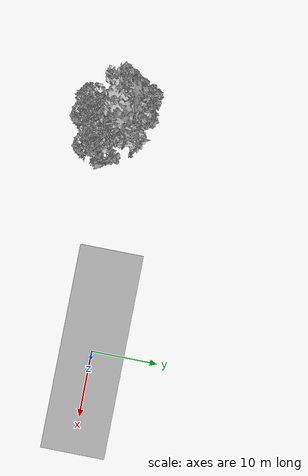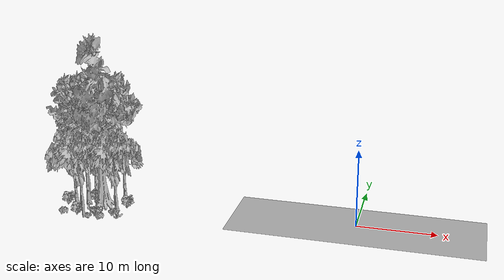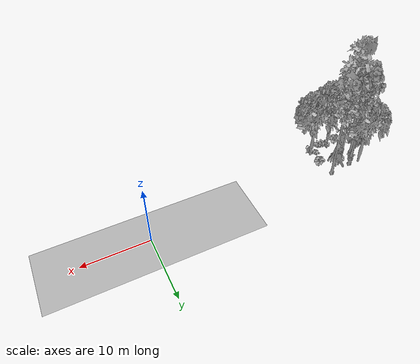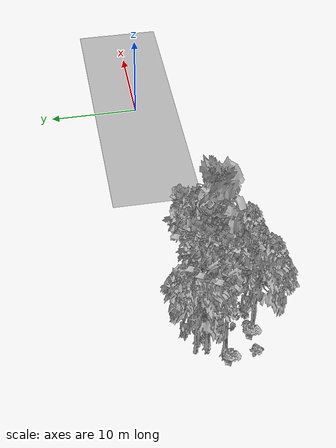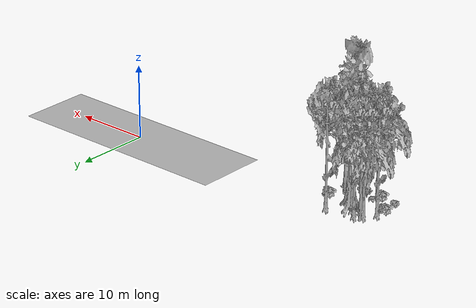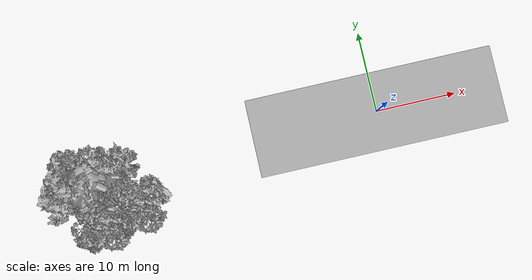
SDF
<sdf version="1.7">
 <world name="default">
  <model name="ground_plane">
   <static>1</static>
   <link name="link">
    <collision name="collision">
     <geometry><plane><normal>0 0 1</normal><size>100 100</size></plane></geometry>
     <surface><contact><ode><min_depth>0.01</min_depth><max_vel>0</max_vel></ode></contact></surface>
    </collision>
    <visual name="grass">
     <cast_shadows>0</cast_shadows>
     <geometry>
      <mesh>
       <scale>0.5814285714285714 0.18142857142857144 0.1</scale>
       <uri>file://grass_plane/meshes/grass_plane.dae</uri>
      </mesh>
     </geometry>
    </visual>
   </link>
  </model>
  <model name="Tree 41">
   <static>1</static>
   <pose>-35.76319996034075 -0.11443576941628919 0 1.57079 -0 0</pose>
   <link name="link">
    <collision name="collision">
     <geometry><mesh><scale>3.5 5 3.5</scale><uri>model://tree_2/meshes/tree_2.obj</uri></mesh></geometry>
    </collision>
    <visual name="visual">
     <geometry><mesh><scale>3.5 5 3.5</scale><uri>model://tree_2/meshes/tree_2.obj</uri></mesh></geometry>
    </visual>
   </link>
  </model>
  <model name="Tree 51">
   <static>1</static>
   <pose>-36.231212242525345 -2.721356952311149 0 1.57079 -0 0</pose>
   <link name="link">
    <collision name="collision">
     <geometry><mesh><scale>3.5 5 3.5</scale><uri>model://tree_9/meshes/tree_9.obj</uri></mesh></geometry>
    </collision>
    <visual name="visual">
     <geometry><mesh><scale>3.5 5 3.5</scale><uri>model://tree_9/meshes/tree_9.obj</uri></mesh></geometry>
    </visual>
   </link>
  </model>
  <model name="Tree 126">
   <static>1</static>
   <pose>-29.67367078451928 -4.9132617744595635 0 1.57079 -0 0</pose>
   <link name="link">
    <collision name="collision">
     <geometry><mesh><scale>3.5 5 3.5</scale><uri>model://tree_2/meshes/tree_2.obj</uri></mesh></geometry>
    </collision>
    <visual name="visual">
     <geometry><mesh><scale>3.5 5 3.5</scale><uri>model://tree_2/meshes/tree_2.obj</uri></mesh></geometry>
    </visual>
   </link>
  </model>
  <model name="Tree 275">
   <static>1</static>
   <pose>-32.856526243707705 -1.9902039966198632 0 1.57079 -0 0</pose>
   <link name="link">
    <collision name="collision">
     <geometry><mesh><scale>3.5 5 3.5</scale><uri>model://tree_4/meshes/tree_4.obj</uri></mesh></geometry>
    </collision>
    <visual name="visual">
     <geometry><mesh><scale>3.5 5 3.5</scale><uri>model://tree_4/meshes/tree_4.obj</uri></mesh></geometry>
    </visual>
   </link>
  </model>
  <model name="Tree 291">
   <static>1</static>
   <pose>-34.386121086368505 -0.5679108117623564 0 1.57079 -0 0</pose>
   <link name="link">
    <collision name="collision">
     <geometry><mesh><scale>3.5 5 3.5</scale><uri>model://tree_9/meshes/tree_9.obj</uri></mesh></geometry>
    </collision>
    <visual name="visual">
     <geometry><mesh><scale>3.5 5 3.5</scale><uri>model://tree_9/meshes/tree_9.obj</uri></mesh></geometry>
    </visual>
   </link>
  </model>
  <model name="Tree 313">
   <static>1</static>
   <pose>-30.54183929553331 -0.07126436889514487 0 1.57079 -0 0</pose>
   <link name="link">
    <collision name="collision">
     <geometry><mesh><scale>3.5 5 3.5</scale><uri>model://tree_9/meshes/tree_9.obj</uri></mesh></geometry>
    </collision>
    <visual name="visual">
     <geometry><mesh><scale>3.5 5 3.5</scale><uri>model://tree_9/meshes/tree_9.obj</uri></mesh></geometry>
    </visual>
   </link>
  </model>
  <model name="Tree 359">
   <static>1</static>
   <pose>-33.77350052740013 -6.001413623972185 0 1.57079 -0 0</pose>
   <link name="link">
    <collision name="collision">
     <geometry><mesh><scale>3.5 5 3.5</scale><uri>model://tree_2/meshes/tree_2.obj</uri></mesh></geometry>
    </collision>
    <visual name="visual">
     <geometry><mesh><scale>3.5 5 3.5</scale><uri>model://tree_2/meshes/tree_2.obj</uri></mesh></geometry>
    </visual>
   </link>
  </model>
  <model name="Tree 395">
   <static>1</static>
   <pose>-35.244911325114025 -1.2905477387843902 0 1.57079 -0 0</pose>
   <link name="link">
    <collision name="collision">
     <geometry><mesh><scale>3.5 5 3.5</scale><uri>model://tree_9/meshes/tree_9.obj</uri></mesh></geometry>
    </collision>
    <visual name="visual">
     <geometry><mesh><scale>3.5 5 3.5</scale><uri>model://tree_9/meshes/tree_9.obj</uri></mesh></geometry>
    </visual>
   </link>
  </model>
  <model name="Tree 405">
   <static>1</static>
   <pose>-33.28736334767897 -1.6147559337023623 0 1.57079 -0 0</pose>
   <link name="link">
    <collision name="collision">
     <geometry><mesh><scale>3.5 5 3.5</scale><uri>model://tree_9/meshes/tree_9.obj</uri></mesh></geometry>
    </collision>
    <visual name="visual">
     <geometry><mesh><scale>3.5 5 3.5</scale><uri>model://tree_9/meshes/tree_9.obj</uri></mesh></geometry>
    </visual>
   </link>
  </model>
  <model name="Bush 36">
   <static>1</static>
   <pose>-30.270194474046694 -4.506586633709031 0 1.57079 -0 0</pose>
   <link name="link">
    <collision name="collision">
     <geometry><mesh><scale>2 2 2</scale><uri>model://bush_3/meshes/bush_3.obj</uri></mesh></geometry>
     <surface><contact><collide_without_contact>false</collide_without_contact></contact></surface>
    </collision>
    <visual name="visual">
     <geometry><mesh><scale>2 2 2</scale><uri>model://bush_3/meshes/bush_3.obj</uri></mesh></geometry>
    </visual>
   </link>
  </model>
  <model name="Bush 93">
   <static>1</static>
   <pose>-31.80163202868382 -5.5144611122316824 0 1.57079 -0 0</pose>
   <link name="link">
    <collision name="collision">
     <geometry><mesh><scale>2 2 2</scale><uri>model://bush_0/meshes/bush_0.obj</uri></mesh></geometry>
     <surface><contact><collide_without_contact>false</collide_without_contact></contact></surface>
    </collision>
    <visual name="visual">
     <geometry><mesh><scale>2 2 2</scale><uri>model://bush_0/meshes/bush_0.obj</uri></mesh></geometry>
    </visual>
   </link>
  </model>
  <model name="Bush 111">
   <static>1</static>
   <pose>-32.52138851803389 -5.488902275456004 0 1.57079 -0 0</pose>
   <link name="link">
    <collision name="collision">
     <geometry><mesh><scale>2 2 2</scale><uri>model://bush_0/meshes/bush_0.obj</uri></mesh></geometry>
     <surface><contact><collide_without_contact>false</collide_without_contact></contact></surface>
    </collision>
    <visual name="visual">
     <geometry><mesh><scale>2 2 2</scale><uri>model://bush_0/meshes/bush_0.obj</uri></mesh></geometry>
    </visual>
   </link>
  </model>
  <model name="Bush 133">
   <static>1</static>
   <pose>-37.280731151546576 -3.157958667018697 0 1.57079 -0 0</pose>
   <link name="link">
    <collision name="collision">
     <geometry><mesh><scale>2 2 2</scale><uri>model://bush_1/meshes/bush_1.obj</uri></mesh></geometry>
     <surface><contact><collide_without_contact>false</collide_without_contact></contact></surface>
    </collision>
    <visual name="visual">
     <geometry><mesh><scale>2 2 2</scale><uri>model://bush_1/meshes/bush_1.obj</uri></mesh></geometry>
    </visual>
   </link>
  </model>
  <model name="Bush 136">
   <static>1</static>
   <pose>-29.38054336626006 -2.348069911351862 0 1.57079 -0 0</pose>
   <link name="link">
    <collision name="collision">
     <geometry><mesh><scale>2 2 2</scale><uri>model://bush_1/meshes/bush_1.obj</uri></mesh></geometry>
     <surface><contact><collide_without_contact>false</collide_without_contact></contact></surface>
    </collision>
    <visual name="visual">
     <geometry><mesh><scale>2 2 2</scale><uri>model://bush_1/meshes/bush_1.obj</uri></mesh></geometry>
    </visual>
   </link>
  </model>
  <model name="Bush 159">
   <static>1</static>
   <pose>-36.55767827008609 -5.668523422292576 0 1.57079 -0 0</pose>
   <link name="link">
    <collision name="collision">
     <geometry><mesh><scale>2 2 2</scale><uri>model://bush_3/meshes/bush_3.obj</uri></mesh></geometry>
     <surface><contact><collide_without_contact>false</collide_without_contact></contact></surface>
    </collision>
    <visual name="visual">
     <geometry><mesh><scale>2 2 2</scale><uri>model://bush_3/meshes/bush_3.obj</uri></mesh></geometry>
    </visual>
   </link>
  </model>
  <model name="Bush 168">
   <static>1</static>
   <pose>-33.42235349066796 -5.624524676220647 0 1.57079 -0 0</pose>
   <link name="link">
    <collision name="collision">
     <geometry><mesh><scale>2 2 2</scale><uri>model://bush_2/meshes/bush_2.obj</uri></mesh></geometry>
     <surface><contact><collide_without_contact>false</collide_without_contact></contact></surface>
    </collision>
    <visual name="visual">
     <geometry><mesh><scale>2 2 2</scale><uri>model://bush_2/meshes/bush_2.obj</uri></mesh></geometry>
    </visual>
   </link>
  </model>
  <model name="Bush 172">
   <static>1</static>
   <pose>-29.539345832561292 -5.446292612456677 0 1.57079 -0 0</pose>
   <link name="link">
    <collision name="collision">
     <geometry><mesh><scale>2 2 2</scale><uri>model://bush_4/meshes/bush_4.obj</uri></mesh></geometry>
     <surface><contact><collide_without_contact>false</collide_without_contact></contact></surface>
    </collision>
    <visual name="visual">
     <geometry><mesh><scale>2 2 2</scale><uri>model://bush_4/meshes/bush_4.obj</uri></mesh></geometry>
    </visual>
   </link>
  </model>
  <model name="Bush 252">
   <static>1</static>
   <pose>-31.484016461819195 -5.965496301483913 0 1.57079 -0 0</pose>
   <link name="link">
    <collision name="collision">
     <geometry><mesh><scale>2 2 2</scale><uri>model://bush_3/meshes/bush_3.obj</uri></mesh></geometry>
     <surface><contact><collide_without_contact>false</collide_without_contact></contact></surface>
    </collision>
    <visual name="visual">
     <geometry><mesh><scale>2 2 2</scale><uri>model://bush_3/meshes/bush_3.obj</uri></mesh></geometry>
    </visual>
   </link>
  </model>
  <model name="Bush 253">
   <static>1</static>
   <pose>-34.76892386682922 -5.7268532508785714 0 1.57079 -0 0</pose>
   <link name="link">
    <collision name="collision">
     <geometry><mesh><scale>2 2 2</scale><uri>model://bush_1/meshes/bush_1.obj</uri></mesh></geometry>
     <surface><contact><collide_without_contact>false</collide_without_contact></contact></surface>
    </collision>
    <visual name="visual">
     <geometry><mesh><scale>2 2 2</scale><uri>model://bush_1/meshes/bush_1.obj</uri></mesh></geometry>
    </visual>
   </link>
  </model>
  <model name="Bush 261">
   <static>1</static>
   <pose>-34.27515438685616 -0.5099138312126712 0 1.57079 -0 0</pose>
   <link name="link">
    <collision name="collision">
     <geometry><mesh><scale>2 2 2</scale><uri>model://bush_5/meshes/bush_5.obj</uri></mesh></geometry>
     <surface><contact><collide_without_contact>false</collide_without_contact></contact></surface>
    </collision>
    <visual name="visual">
     <geometry><mesh><scale>2 2 2</scale><uri>model://bush_5/meshes/bush_5.obj</uri></mesh></geometry>
    </visual>
   </link>
  </model>
  <model name="Bush 321">
   <static>1</static>
   <pose>-34.74974755521109 -1.02511402666949 0 1.57079 -0 0</pose>
   <link name="link">
    <collision name="collision">
     <geometry><mesh><scale>2 2 2</scale><uri>model://bush_4/meshes/bush_4.obj</uri></mesh></geometry>
     <surface><contact><collide_without_contact>false</collide_without_contact></contact></surface>
    </collision>
    <visual name="visual">
     <geometry><mesh><scale>2 2 2</scale><uri>model://bush_4/meshes/bush_4.obj</uri></mesh></geometry>
    </visual>
   </link>
  </model>
 </world>
</sdf>
